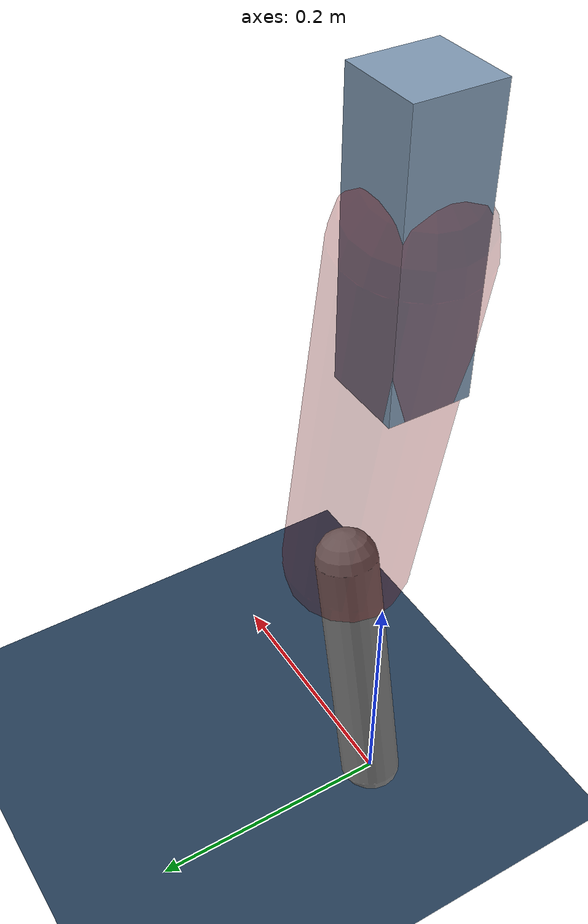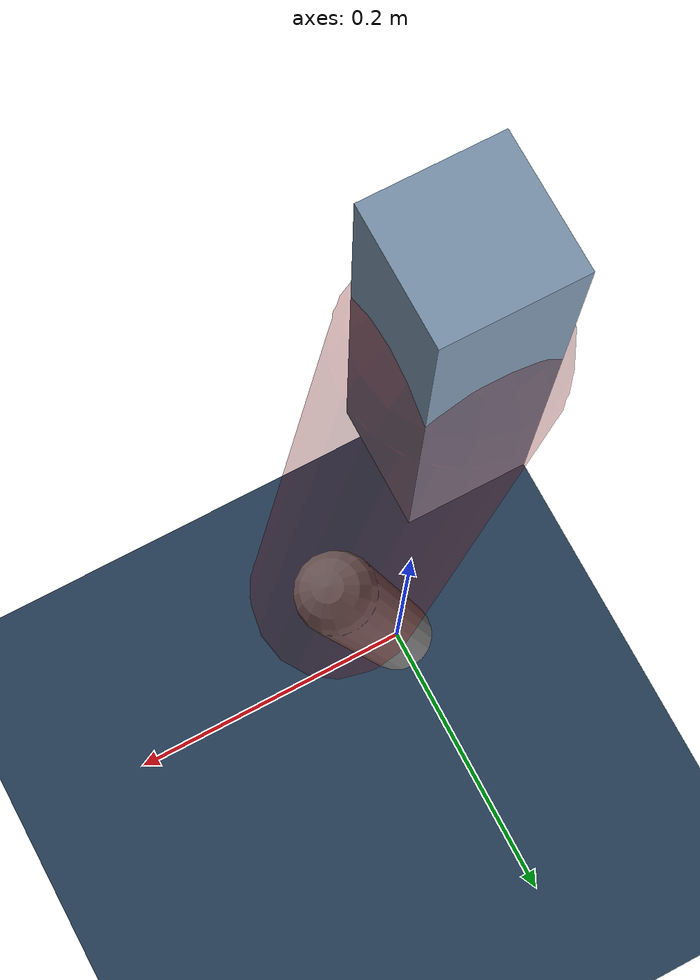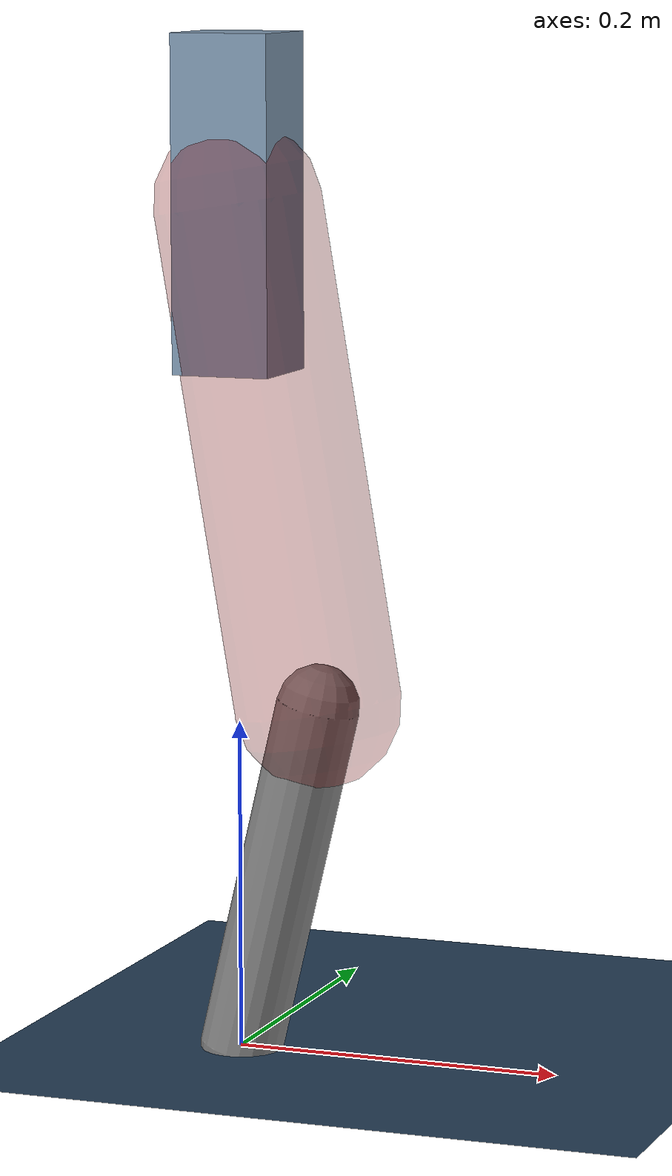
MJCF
<mujoco model="Hopper2D">
	<compiler inertiafromgeom="true" angle="radian" />
	<option timestep="0.001" integrator="implicit" cone="elliptic" solver="Newton" tolerance="1e-10" />

	<default>
		<geom contype="1" conaffinity="1" condim="3" friction="2 0.005 0.0001" solref="0.005 1" />
		<joint limited="true" damping="0.1" />
	</default>

	<asset>
		<texture name="skybox" type="skybox" builtin="gradient" rgb1=".4 .6 .8" rgb2="0 0 0" width="800" height="800" />
		<texture name="grid" type="2d" builtin="checker" rgb1=".1 .2 .3" rgb2=".2 .3 .4" width="300" height="300" mark="edge" markrgb=".2 .3 .4" />
		<material name="ground" texture="grid" texrepeat="1 1" texuniform="true" reflectance="0.1" />
		<material name="leg" rgba="0.5 0.6 0.7 1" />
	</asset>

	<worldbody>

		<geom name="floor" type="plane" size="5 5 0.25" material="ground" />

		<light directional="false" diffuse="0.8 0.8 0.8" specular="0.3 0.3 0.3" pos="0 0 2" dir="0 0 -1" />
		<light mode="targetbodycom" target="base" directional="false" diffuse="0.8 0.8 0.8" specular="0.3 0.3 0.3" pos="0 0 2" dir="0 0 -1" />

		<camera name="fixed" pos="0 -2 1" xyaxes="1 0 0 0 0 1" />
		<camera name="tracking" mode="trackcom" pos="0 -3 1" />

		<body name="root" pos="0 0 0.5107198812176628">
			<joint name="slide_x" type="slide" axis="1 0 0" range="-100 100" />
			<joint name="slide_z" type="slide" axis="0 0 1" range="0 10" />

			<body name="base" pos="0 0 0">
				<geom name="torso" type="box" size="0.03 0.03 0.1" mass="4.401" material="leg" />

				<body name="link1" pos="0 0 0" euler="0 1.404129147053795 0">
					<joint type="hinge" axis="0 -1 0" pos="0 0 0" name="hinge1" limited="true" range="-3.14 3.14" stiffness="0" damping="0.1" />
					<geom name="thigh" type="capsule" fromto="0 0 0 0.3019972881951307 0 0" size="0.05" rgba="0.5 0 0 0.3" mass="0.994092678126853" />

					<body name="link2" pos="0.3019972881951307 0 0" euler="0 0.39777784629051105 0">
						<joint type="hinge" axis="0 -1 0" pos="0 0 0" name="hinge2" limited="true" range="-3.14 3.14" stiffness="0" damping="0.1" />
						<geom name="shank" type="capsule" fromto="0 0 0 0.21872259302253205 0 0" size="0.025" mass="0.41657807441802563" />

					</body>
				</body>
			</body>
		</body>
	</worldbody>

	<actuator>
		<motor name="torque1" joint="hinge1" ctrlrange="-264.332643510493 264.332643510493" ctrllimited="true" gear="1" />
		<motor name="torque2" joint="hinge2" ctrlrange="-90.31069169326163 90.31069169326163" ctrllimited="true" gear="1" />
	</actuator>
</mujoco>
